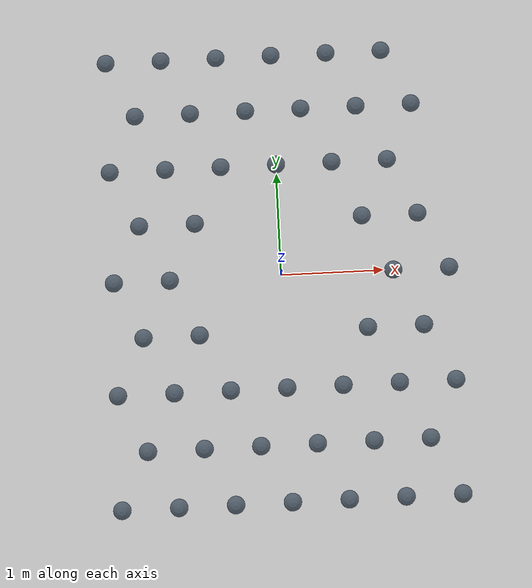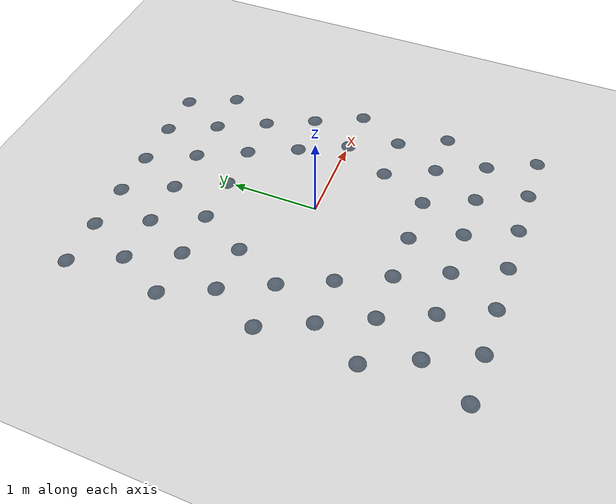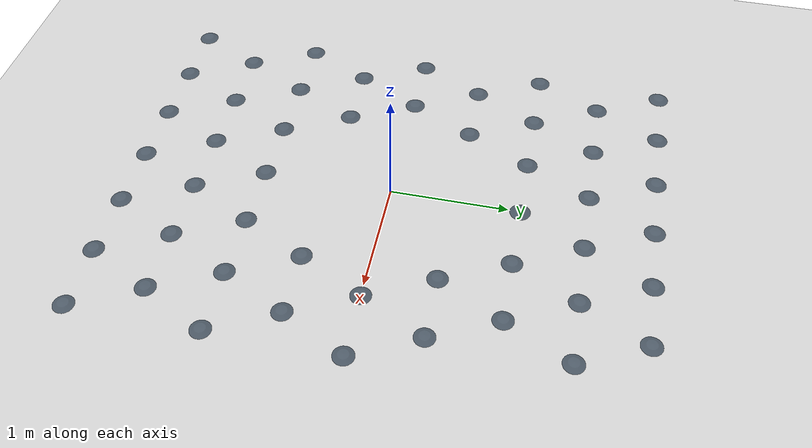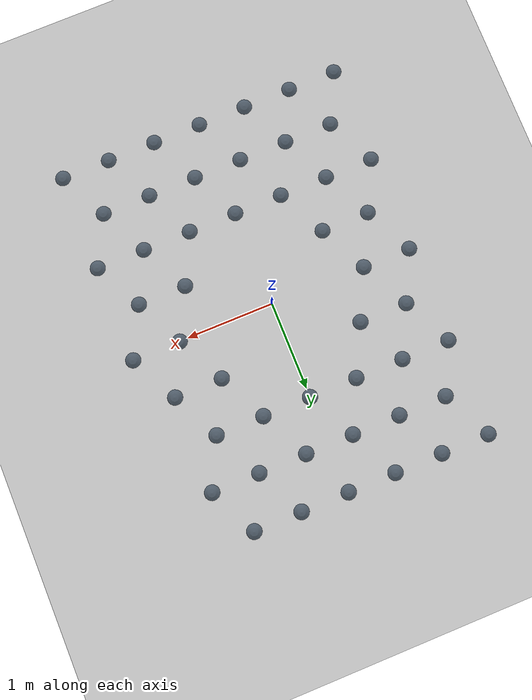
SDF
<sdf version="1.9">
 <world name="empty_ground">
  <model name="ground_plane">
   <static>true</static>
   <link name="link">
    <collision name="collision">
     <geometry><plane><normal>0 0 1</normal><size>100 100</size></plane></geometry>
     <surface>
      <friction>
       <ode><mu>1.5</mu><mu2>1.5</mu2></ode>
       <torsional><coefficient>0.0</coefficient></torsional>
      </friction>
     </surface>
    </collision>
    <visual name="visual">
     <geometry><plane><normal>0 0 1</normal><size>100 100</size></plane></geometry>
     <material><ambient>0.8 0.8 0.8 1</ambient><diffuse>0.8 0.8 0.8 1</diffuse></material>
    </visual>
   </link>
  </model>
  <model name="dome_1">
   <static>true</static>
   <pose>-1.650 -2.200 -0.1213 0 0 0</pose>
   <link name="link">
    <collision name="collision">
     <geometry><sphere><radius>0.1453</radius></sphere></geometry>
     <surface>
      <friction>
       <ode><mu>1.5</mu><mu2>1.5</mu2></ode>
       <torsional><coefficient>0.0</coefficient></torsional>
      </friction>
     </surface>
    </collision>
    <visual name="visual">
     <geometry><sphere><radius>0.1453</radius></sphere></geometry>
     <material><ambient>0.25 0.3 0.35 1</ambient><diffuse>0.30 0.35 0.4 1</diffuse></material>
    </visual>
   </link>
  </model>
  <model name="dome_2">
   <static>true</static>
   <pose>-1.380 -1.650 -0.1213 0 0 0</pose>
   <link name="link">
    <collision name="collision">
     <geometry><sphere><radius>0.1453</radius></sphere></geometry>
     <surface>
      <friction>
       <ode><mu>1.5</mu><mu2>1.5</mu2></ode>
       <torsional><coefficient>0.0</coefficient></torsional>
      </friction>
     </surface>
    </collision>
    <visual name="visual">
     <geometry><sphere><radius>0.1453</radius></sphere></geometry>
     <material><ambient>0.25 0.3 0.35 1</ambient><diffuse>0.30 0.35 0.4 1</diffuse></material>
    </visual>
   </link>
  </model>
  <model name="dome_3">
   <static>true</static>
   <pose>-1.650 -1.100 -0.1213 0 0 0</pose>
   <link name="link">
    <collision name="collision">
     <geometry><sphere><radius>0.1453</radius></sphere></geometry>
     <surface>
      <friction>
       <ode><mu>1.5</mu><mu2>1.5</mu2></ode>
       <torsional><coefficient>0.0</coefficient></torsional>
      </friction>
     </surface>
    </collision>
    <visual name="visual">
     <geometry><sphere><radius>0.1453</radius></sphere></geometry>
     <material><ambient>0.25 0.3 0.35 1</ambient><diffuse>0.30 0.35 0.4 1</diffuse></material>
    </visual>
   </link>
  </model>
  <model name="dome_4">
   <static>true</static>
   <pose>-1.380 -0.550 -0.1213 0 0 0</pose>
   <link name="link">
    <collision name="collision">
     <geometry><sphere><radius>0.1453</radius></sphere></geometry>
     <surface>
      <friction>
       <ode><mu>1.5</mu><mu2>1.5</mu2></ode>
       <torsional><coefficient>0.0</coefficient></torsional>
      </friction>
     </surface>
    </collision>
    <visual name="visual">
     <geometry><sphere><radius>0.1453</radius></sphere></geometry>
     <material><ambient>0.25 0.3 0.35 1</ambient><diffuse>0.30 0.35 0.4 1</diffuse></material>
    </visual>
   </link>
  </model>
  <model name="dome_5">
   <static>true</static>
   <pose>-1.650 0.000 -0.1213 0 0 0</pose>
   <link name="link">
    <collision name="collision">
     <geometry><sphere><radius>0.1453</radius></sphere></geometry>
     <surface>
      <friction>
       <ode><mu>1.5</mu><mu2>1.5</mu2></ode>
       <torsional><coefficient>0.0</coefficient></torsional>
      </friction>
     </surface>
    </collision>
    <visual name="visual">
     <geometry><sphere><radius>0.1453</radius></sphere></geometry>
     <material><ambient>0.25 0.3 0.35 1</ambient><diffuse>0.30 0.35 0.4 1</diffuse></material>
    </visual>
   </link>
  </model>
  <model name="dome_6">
   <static>true</static>
   <pose>-1.380 0.550 -0.1213 0 0 0</pose>
   <link name="link">
    <collision name="collision">
     <geometry><sphere><radius>0.1453</radius></sphere></geometry>
     <surface>
      <friction>
       <ode><mu>1.5</mu><mu2>1.5</mu2></ode>
       <torsional><coefficient>0.0</coefficient></torsional>
      </friction>
     </surface>
    </collision>
    <visual name="visual">
     <geometry><sphere><radius>0.1453</radius></sphere></geometry>
     <material><ambient>0.25 0.3 0.35 1</ambient><diffuse>0.30 0.35 0.4 1</diffuse></material>
    </visual>
   </link>
  </model>
  <model name="dome_7">
   <static>true</static>
   <pose>-1.650 1.100 -0.1213 0 0 0</pose>
   <link name="link">
    <collision name="collision">
     <geometry><sphere><radius>0.1453</radius></sphere></geometry>
     <surface>
      <friction>
       <ode><mu>1.5</mu><mu2>1.5</mu2></ode>
       <torsional><coefficient>0.0</coefficient></torsional>
      </friction>
     </surface>
    </collision>
    <visual name="visual">
     <geometry><sphere><radius>0.1453</radius></sphere></geometry>
     <material><ambient>0.25 0.3 0.35 1</ambient><diffuse>0.30 0.35 0.4 1</diffuse></material>
    </visual>
   </link>
  </model>
  <model name="dome_8">
   <static>true</static>
   <pose>-1.380 1.650 -0.1213 0 0 0</pose>
   <link name="link">
    <collision name="collision">
     <geometry><sphere><radius>0.1453</radius></sphere></geometry>
     <surface>
      <friction>
       <ode><mu>1.5</mu><mu2>1.5</mu2></ode>
       <torsional><coefficient>0.0</coefficient></torsional>
      </friction>
     </surface>
    </collision>
    <visual name="visual">
     <geometry><sphere><radius>0.1453</radius></sphere></geometry>
     <material><ambient>0.25 0.3 0.35 1</ambient><diffuse>0.30 0.35 0.4 1</diffuse></material>
    </visual>
   </link>
  </model>
  <model name="dome_9">
   <static>true</static>
   <pose>-1.650 2.200 -0.1213 0 0 0</pose>
   <link name="link">
    <collision name="collision">
     <geometry><sphere><radius>0.1453</radius></sphere></geometry>
     <surface>
      <friction>
       <ode><mu>1.5</mu><mu2>1.5</mu2></ode>
       <torsional><coefficient>0.0</coefficient></torsional>
      </friction>
     </surface>
    </collision>
    <visual name="visual">
     <geometry><sphere><radius>0.1453</radius></sphere></geometry>
     <material><ambient>0.25 0.3 0.35 1</ambient><diffuse>0.30 0.35 0.4 1</diffuse></material>
    </visual>
   </link>
  </model>
  <model name="dome_10">
   <static>true</static>
   <pose>-1.100 -2.200 -0.1213 0 0 0</pose>
   <link name="link">
    <collision name="collision">
     <geometry><sphere><radius>0.1453</radius></sphere></geometry>
     <surface>
      <friction>
       <ode><mu>1.5</mu><mu2>1.5</mu2></ode>
       <torsional><coefficient>0.0</coefficient></torsional>
      </friction>
     </surface>
    </collision>
    <visual name="visual">
     <geometry><sphere><radius>0.1453</radius></sphere></geometry>
     <material><ambient>0.25 0.3 0.35 1</ambient><diffuse>0.30 0.35 0.4 1</diffuse></material>
    </visual>
   </link>
  </model>
  <model name="dome_11">
   <static>true</static>
   <pose>-0.830 -1.650 -0.1213 0 0 0</pose>
   <link name="link">
    <collision name="collision">
     <geometry><sphere><radius>0.1453</radius></sphere></geometry>
     <surface>
      <friction>
       <ode><mu>1.5</mu><mu2>1.5</mu2></ode>
       <torsional><coefficient>0.0</coefficient></torsional>
      </friction>
     </surface>
    </collision>
    <visual name="visual">
     <geometry><sphere><radius>0.1453</radius></sphere></geometry>
     <material><ambient>0.25 0.3 0.35 1</ambient><diffuse>0.30 0.35 0.4 1</diffuse></material>
    </visual>
   </link>
  </model>
  <model name="dome_12">
   <static>true</static>
   <pose>-1.100 -1.100 -0.1213 0 0 0</pose>
   <link name="link">
    <collision name="collision">
     <geometry><sphere><radius>0.1453</radius></sphere></geometry>
     <surface>
      <friction>
       <ode><mu>1.5</mu><mu2>1.5</mu2></ode>
       <torsional><coefficient>0.0</coefficient></torsional>
      </friction>
     </surface>
    </collision>
    <visual name="visual">
     <geometry><sphere><radius>0.1453</radius></sphere></geometry>
     <material><ambient>0.25 0.3 0.35 1</ambient><diffuse>0.30 0.35 0.4 1</diffuse></material>
    </visual>
   </link>
  </model>
  <model name="dome_13">
   <static>true</static>
   <pose>-0.830 -0.550 -0.1213 0 0 0</pose>
   <link name="link">
    <collision name="collision">
     <geometry><sphere><radius>0.1453</radius></sphere></geometry>
     <surface>
      <friction>
       <ode><mu>1.5</mu><mu2>1.5</mu2></ode>
       <torsional><coefficient>0.0</coefficient></torsional>
      </friction>
     </surface>
    </collision>
    <visual name="visual">
     <geometry><sphere><radius>0.1453</radius></sphere></geometry>
     <material><ambient>0.25 0.3 0.35 1</ambient><diffuse>0.30 0.35 0.4 1</diffuse></material>
    </visual>
   </link>
  </model>
  <model name="dome_14">
   <static>true</static>
   <pose>-1.100 0.000 -0.1213 0 0 0</pose>
   <link name="link">
    <collision name="collision">
     <geometry><sphere><radius>0.1453</radius></sphere></geometry>
     <surface>
      <friction>
       <ode><mu>1.5</mu><mu2>1.5</mu2></ode>
       <torsional><coefficient>0.0</coefficient></torsional>
      </friction>
     </surface>
    </collision>
    <visual name="visual">
     <geometry><sphere><radius>0.1453</radius></sphere></geometry>
     <material><ambient>0.25 0.3 0.35 1</ambient><diffuse>0.30 0.35 0.4 1</diffuse></material>
    </visual>
   </link>
  </model>
  <model name="dome_15">
   <static>true</static>
   <pose>-0.830 0.550 -0.1213 0 0 0</pose>
   <link name="link">
    <collision name="collision">
     <geometry><sphere><radius>0.1453</radius></sphere></geometry>
     <surface>
      <friction>
       <ode><mu>1.5</mu><mu2>1.5</mu2></ode>
       <torsional><coefficient>0.0</coefficient></torsional>
      </friction>
     </surface>
    </collision>
    <visual name="visual">
     <geometry><sphere><radius>0.1453</radius></sphere></geometry>
     <material><ambient>0.25 0.3 0.35 1</ambient><diffuse>0.30 0.35 0.4 1</diffuse></material>
    </visual>
   </link>
  </model>
  <model name="dome_16">
   <static>true</static>
   <pose>-1.100 1.100 -0.1213 0 0 0</pose>
   <link name="link">
    <collision name="collision">
     <geometry><sphere><radius>0.1453</radius></sphere></geometry>
     <surface>
      <friction>
       <ode><mu>1.5</mu><mu2>1.5</mu2></ode>
       <torsional><coefficient>0.0</coefficient></torsional>
      </friction>
     </surface>
    </collision>
    <visual name="visual">
     <geometry><sphere><radius>0.1453</radius></sphere></geometry>
     <material><ambient>0.25 0.3 0.35 1</ambient><diffuse>0.30 0.35 0.4 1</diffuse></material>
    </visual>
   </link>
  </model>
  <model name="dome_17">
   <static>true</static>
   <pose>-0.830 1.650 -0.1213 0 0 0</pose>
   <link name="link">
    <collision name="collision">
     <geometry><sphere><radius>0.1453</radius></sphere></geometry>
     <surface>
      <friction>
       <ode><mu>1.5</mu><mu2>1.5</mu2></ode>
       <torsional><coefficient>0.0</coefficient></torsional>
      </friction>
     </surface>
    </collision>
    <visual name="visual">
     <geometry><sphere><radius>0.1453</radius></sphere></geometry>
     <material><ambient>0.25 0.3 0.35 1</ambient><diffuse>0.30 0.35 0.4 1</diffuse></material>
    </visual>
   </link>
  </model>
  <model name="dome_18">
   <static>true</static>
   <pose>-1.100 2.200 -0.1213 0 0 0</pose>
   <link name="link">
    <collision name="collision">
     <geometry><sphere><radius>0.1453</radius></sphere></geometry>
     <surface>
      <friction>
       <ode><mu>1.5</mu><mu2>1.5</mu2></ode>
       <torsional><coefficient>0.0</coefficient></torsional>
      </friction>
     </surface>
    </collision>
    <visual name="visual">
     <geometry><sphere><radius>0.1453</radius></sphere></geometry>
     <material><ambient>0.25 0.3 0.35 1</ambient><diffuse>0.30 0.35 0.4 1</diffuse></material>
    </visual>
   </link>
  </model>
  <model name="dome_19">
   <static>true</static>
   <pose>-0.550 -2.200 -0.1213 0 0 0</pose>
   <link name="link">
    <collision name="collision">
     <geometry><sphere><radius>0.1453</radius></sphere></geometry>
     <surface>
      <friction>
       <ode><mu>1.5</mu><mu2>1.5</mu2></ode>
       <torsional><coefficient>0.0</coefficient></torsional>
      </friction>
     </surface>
    </collision>
    <visual name="visual">
     <geometry><sphere><radius>0.1453</radius></sphere></geometry>
     <material><ambient>0.25 0.3 0.35 1</ambient><diffuse>0.30 0.35 0.4 1</diffuse></material>
    </visual>
   </link>
  </model>
  <model name="dome_20">
   <static>true</static>
   <pose>-0.280 -1.650 -0.1213 0 0 0</pose>
   <link name="link">
    <collision name="collision">
     <geometry><sphere><radius>0.1453</radius></sphere></geometry>
     <surface>
      <friction>
       <ode><mu>1.5</mu><mu2>1.5</mu2></ode>
       <torsional><coefficient>0.0</coefficient></torsional>
      </friction>
     </surface>
    </collision>
    <visual name="visual">
     <geometry><sphere><radius>0.1453</radius></sphere></geometry>
     <material><ambient>0.25 0.3 0.35 1</ambient><diffuse>0.30 0.35 0.4 1</diffuse></material>
    </visual>
   </link>
  </model>
  <model name="dome_21">
   <static>true</static>
   <pose>-0.550 -1.100 -0.1213 0 0 0</pose>
   <link name="link">
    <collision name="collision">
     <geometry><sphere><radius>0.1453</radius></sphere></geometry>
     <surface>
      <friction>
       <ode><mu>1.5</mu><mu2>1.5</mu2></ode>
       <torsional><coefficient>0.0</coefficient></torsional>
      </friction>
     </surface>
    </collision>
    <visual name="visual">
     <geometry><sphere><radius>0.1453</radius></sphere></geometry>
     <material><ambient>0.25 0.3 0.35 1</ambient><diffuse>0.30 0.35 0.4 1</diffuse></material>
    </visual>
   </link>
  </model>
  <model name="dome_22">
   <static>true</static>
   <pose>-0.550 1.100 -0.1213 0 0 0</pose>
   <link name="link">
    <collision name="collision">
     <geometry><sphere><radius>0.1453</radius></sphere></geometry>
     <surface>
      <friction>
       <ode><mu>1.5</mu><mu2>1.5</mu2></ode>
       <torsional><coefficient>0.0</coefficient></torsional>
      </friction>
     </surface>
    </collision>
    <visual name="visual">
     <geometry><sphere><radius>0.1453</radius></sphere></geometry>
     <material><ambient>0.25 0.3 0.35 1</ambient><diffuse>0.30 0.35 0.4 1</diffuse></material>
    </visual>
   </link>
  </model>
  <model name="dome_23">
   <static>true</static>
   <pose>-0.280 1.650 -0.1213 0 0 0</pose>
   <link name="link">
    <collision name="collision">
     <geometry><sphere><radius>0.1453</radius></sphere></geometry>
     <surface>
      <friction>
       <ode><mu>1.5</mu><mu2>1.5</mu2></ode>
       <torsional><coefficient>0.0</coefficient></torsional>
      </friction>
     </surface>
    </collision>
    <visual name="visual">
     <geometry><sphere><radius>0.1453</radius></sphere></geometry>
     <material><ambient>0.25 0.3 0.35 1</ambient><diffuse>0.30 0.35 0.4 1</diffuse></material>
    </visual>
   </link>
  </model>
  <model name="dome_24">
   <static>true</static>
   <pose>-0.550 2.200 -0.1213 0 0 0</pose>
   <link name="link">
    <collision name="collision">
     <geometry><sphere><radius>0.1453</radius></sphere></geometry>
     <surface>
      <friction>
       <ode><mu>1.5</mu><mu2>1.5</mu2></ode>
       <torsional><coefficient>0.0</coefficient></torsional>
      </friction>
     </surface>
    </collision>
    <visual name="visual">
     <geometry><sphere><radius>0.1453</radius></sphere></geometry>
     <material><ambient>0.25 0.3 0.35 1</ambient><diffuse>0.30 0.35 0.4 1</diffuse></material>
    </visual>
   </link>
  </model>
  <model name="dome_25">
   <static>true</static>
   <pose>0.000 -2.200 -0.1213 0 0 0</pose>
   <link name="link">
    <collision name="collision">
     <geometry><sphere><radius>0.1453</radius></sphere></geometry>
     <surface>
      <friction>
       <ode><mu>1.5</mu><mu2>1.5</mu2></ode>
       <torsional><coefficient>0.0</coefficient></torsional>
      </friction>
     </surface>
    </collision>
    <visual name="visual">
     <geometry><sphere><radius>0.1453</radius></sphere></geometry>
     <material><ambient>0.25 0.3 0.35 1</ambient><diffuse>0.30 0.35 0.4 1</diffuse></material>
    </visual>
   </link>
  </model>
  <model name="dome_26">
   <static>true</static>
   <pose>0.270 -1.650 -0.1213 0 0 0</pose>
   <link name="link">
    <collision name="collision">
     <geometry><sphere><radius>0.1453</radius></sphere></geometry>
     <surface>
      <friction>
       <ode><mu>1.5</mu><mu2>1.5</mu2></ode>
       <torsional><coefficient>0.0</coefficient></torsional>
      </friction>
     </surface>
    </collision>
    <visual name="visual">
     <geometry><sphere><radius>0.1453</radius></sphere></geometry>
     <material><ambient>0.25 0.3 0.35 1</ambient><diffuse>0.30 0.35 0.4 1</diffuse></material>
    </visual>
   </link>
  </model>
  <model name="dome_27">
   <static>true</static>
   <pose>0.000 -1.100 -0.1213 0 0 0</pose>
   <link name="link">
    <collision name="collision">
     <geometry><sphere><radius>0.1453</radius></sphere></geometry>
     <surface>
      <friction>
       <ode><mu>1.5</mu><mu2>1.5</mu2></ode>
       <torsional><coefficient>0.0</coefficient></torsional>
      </friction>
     </surface>
    </collision>
    <visual name="visual">
     <geometry><sphere><radius>0.1453</radius></sphere></geometry>
     <material><ambient>0.25 0.3 0.35 1</ambient><diffuse>0.30 0.35 0.4 1</diffuse></material>
    </visual>
   </link>
  </model>
  <model name="dome_28">
   <static>true</static>
   <pose>0.000 1.100 -0.1213 0 0 0</pose>
   <link name="link">
    <collision name="collision">
     <geometry><sphere><radius>0.1453</radius></sphere></geometry>
     <surface>
      <friction>
       <ode><mu>1.5</mu><mu2>1.5</mu2></ode>
       <torsional><coefficient>0.0</coefficient></torsional>
      </friction>
     </surface>
    </collision>
    <visual name="visual">
     <geometry><sphere><radius>0.1453</radius></sphere></geometry>
     <material><ambient>0.25 0.3 0.35 1</ambient><diffuse>0.30 0.35 0.4 1</diffuse></material>
    </visual>
   </link>
  </model>
  <model name="dome_29">
   <static>true</static>
   <pose>0.270 1.650 -0.1213 0 0 0</pose>
   <link name="link">
    <collision name="collision">
     <geometry><sphere><radius>0.1453</radius></sphere></geometry>
     <surface>
      <friction>
       <ode><mu>1.5</mu><mu2>1.5</mu2></ode>
       <torsional><coefficient>0.0</coefficient></torsional>
      </friction>
     </surface>
    </collision>
    <visual name="visual">
     <geometry><sphere><radius>0.1453</radius></sphere></geometry>
     <material><ambient>0.25 0.3 0.35 1</ambient><diffuse>0.30 0.35 0.4 1</diffuse></material>
    </visual>
   </link>
  </model>
  <model name="dome_30">
   <static>true</static>
   <pose>0.000 2.200 -0.1213 0 0 0</pose>
   <link name="link">
    <collision name="collision">
     <geometry><sphere><radius>0.1453</radius></sphere></geometry>
     <surface>
      <friction>
       <ode><mu>1.5</mu><mu2>1.5</mu2></ode>
       <torsional><coefficient>0.0</coefficient></torsional>
      </friction>
     </surface>
    </collision>
    <visual name="visual">
     <geometry><sphere><radius>0.1453</radius></sphere></geometry>
     <material><ambient>0.25 0.3 0.35 1</ambient><diffuse>0.30 0.35 0.4 1</diffuse></material>
    </visual>
   </link>
  </model>
  <model name="dome_31">
   <static>true</static>
   <pose>0.550 -2.200 -0.1213 0 0 0</pose>
   <link name="link">
    <collision name="collision">
     <geometry><sphere><radius>0.1453</radius></sphere></geometry>
     <surface>
      <friction>
       <ode><mu>1.5</mu><mu2>1.5</mu2></ode>
       <torsional><coefficient>0.0</coefficient></torsional>
      </friction>
     </surface>
    </collision>
    <visual name="visual">
     <geometry><sphere><radius>0.1453</radius></sphere></geometry>
     <material><ambient>0.25 0.3 0.35 1</ambient><diffuse>0.30 0.35 0.4 1</diffuse></material>
    </visual>
   </link>
  </model>
  <model name="dome_32">
   <static>true</static>
   <pose>0.820 -1.650 -0.1213 0 0 0</pose>
   <link name="link">
    <collision name="collision">
     <geometry><sphere><radius>0.1453</radius></sphere></geometry>
     <surface>
      <friction>
       <ode><mu>1.5</mu><mu2>1.5</mu2></ode>
       <torsional><coefficient>0.0</coefficient></torsional>
      </friction>
     </surface>
    </collision>
    <visual name="visual">
     <geometry><sphere><radius>0.1453</radius></sphere></geometry>
     <material><ambient>0.25 0.3 0.35 1</ambient><diffuse>0.30 0.35 0.4 1</diffuse></material>
    </visual>
   </link>
  </model>
  <model name="dome_33">
   <static>true</static>
   <pose>0.550 -1.100 -0.1213 0 0 0</pose>
   <link name="link">
    <collision name="collision">
     <geometry><sphere><radius>0.1453</radius></sphere></geometry>
     <surface>
      <friction>
       <ode><mu>1.5</mu><mu2>1.5</mu2></ode>
       <torsional><coefficient>0.0</coefficient></torsional>
      </friction>
     </surface>
    </collision>
    <visual name="visual">
     <geometry><sphere><radius>0.1453</radius></sphere></geometry>
     <material><ambient>0.25 0.3 0.35 1</ambient><diffuse>0.30 0.35 0.4 1</diffuse></material>
    </visual>
   </link>
  </model>
  <model name="dome_34">
   <static>true</static>
   <pose>0.820 -0.550 -0.1213 0 0 0</pose>
   <link name="link">
    <collision name="collision">
     <geometry><sphere><radius>0.1453</radius></sphere></geometry>
     <surface>
      <friction>
       <ode><mu>1.5</mu><mu2>1.5</mu2></ode>
       <torsional><coefficient>0.0</coefficient></torsional>
      </friction>
     </surface>
    </collision>
    <visual name="visual">
     <geometry><sphere><radius>0.1453</radius></sphere></geometry>
     <material><ambient>0.25 0.3 0.35 1</ambient><diffuse>0.30 0.35 0.4 1</diffuse></material>
    </visual>
   </link>
  </model>
  <model name="dome_35">
   <static>true</static>
   <pose>0.820 0.550 -0.1213 0 0 0</pose>
   <link name="link">
    <collision name="collision">
     <geometry><sphere><radius>0.1453</radius></sphere></geometry>
     <surface>
      <friction>
       <ode><mu>1.5</mu><mu2>1.5</mu2></ode>
       <torsional><coefficient>0.0</coefficient></torsional>
      </friction>
     </surface>
    </collision>
    <visual name="visual">
     <geometry><sphere><radius>0.1453</radius></sphere></geometry>
     <material><ambient>0.25 0.3 0.35 1</ambient><diffuse>0.30 0.35 0.4 1</diffuse></material>
    </visual>
   </link>
  </model>
  <model name="dome_36">
   <static>true</static>
   <pose>0.550 1.100 -0.1213 0 0 0</pose>
   <link name="link">
    <collision name="collision">
     <geometry><sphere><radius>0.1453</radius></sphere></geometry>
     <surface>
      <friction>
       <ode><mu>1.5</mu><mu2>1.5</mu2></ode>
       <torsional><coefficient>0.0</coefficient></torsional>
      </friction>
     </surface>
    </collision>
    <visual name="visual">
     <geometry><sphere><radius>0.1453</radius></sphere></geometry>
     <material><ambient>0.25 0.3 0.35 1</ambient><diffuse>0.30 0.35 0.4 1</diffuse></material>
    </visual>
   </link>
  </model>
  <model name="dome_37">
   <static>true</static>
   <pose>0.820 1.650 -0.1213 0 0 0</pose>
   <link name="link">
    <collision name="collision">
     <geometry><sphere><radius>0.1453</radius></sphere></geometry>
     <surface>
      <friction>
       <ode><mu>1.5</mu><mu2>1.5</mu2></ode>
       <torsional><coefficient>0.0</coefficient></torsional>
      </friction>
     </surface>
    </collision>
    <visual name="visual">
     <geometry><sphere><radius>0.1453</radius></sphere></geometry>
     <material><ambient>0.25 0.3 0.35 1</ambient><diffuse>0.30 0.35 0.4 1</diffuse></material>
    </visual>
   </link>
  </model>
  <model name="dome_38">
   <static>true</static>
   <pose>0.550 2.200 -0.1213 0 0 0</pose>
   <link name="link">
    <collision name="collision">
     <geometry><sphere><radius>0.1453</radius></sphere></geometry>
     <surface>
      <friction>
       <ode><mu>1.5</mu><mu2>1.5</mu2></ode>
       <torsional><coefficient>0.0</coefficient></torsional>
      </friction>
     </surface>
    </collision>
    <visual name="visual">
     <geometry><sphere><radius>0.1453</radius></sphere></geometry>
     <material><ambient>0.25 0.3 0.35 1</ambient><diffuse>0.30 0.35 0.4 1</diffuse></material>
    </visual>
   </link>
  </model>
  <model name="dome_39">
   <static>true</static>
   <pose>1.100 -2.200 -0.1213 0 0 0</pose>
   <link name="link">
    <collision name="collision">
     <geometry><sphere><radius>0.1453</radius></sphere></geometry>
     <surface>
      <friction>
       <ode><mu>1.5</mu><mu2>1.5</mu2></ode>
       <torsional><coefficient>0.0</coefficient></torsional>
      </friction>
     </surface>
    </collision>
    <visual name="visual">
     <geometry><sphere><radius>0.1453</radius></sphere></geometry>
     <material><ambient>0.25 0.3 0.35 1</ambient><diffuse>0.30 0.35 0.4 1</diffuse></material>
    </visual>
   </link>
  </model>
  <model name="dome_40">
   <static>true</static>
   <pose>1.370 -1.650 -0.1213 0 0 0</pose>
   <link name="link">
    <collision name="collision">
     <geometry><sphere><radius>0.1453</radius></sphere></geometry>
     <surface>
      <friction>
       <ode><mu>1.5</mu><mu2>1.5</mu2></ode>
       <torsional><coefficient>0.0</coefficient></torsional>
      </friction>
     </surface>
    </collision>
    <visual name="visual">
     <geometry><sphere><radius>0.1453</radius></sphere></geometry>
     <material><ambient>0.25 0.3 0.35 1</ambient><diffuse>0.30 0.35 0.4 1</diffuse></material>
    </visual>
   </link>
  </model>
  <model name="dome_41">
   <static>true</static>
   <pose>1.100 -1.100 -0.1213 0 0 0</pose>
   <link name="link">
    <collision name="collision">
     <geometry><sphere><radius>0.1453</radius></sphere></geometry>
     <surface>
      <friction>
       <ode><mu>1.5</mu><mu2>1.5</mu2></ode>
       <torsional><coefficient>0.0</coefficient></torsional>
      </friction>
     </surface>
    </collision>
    <visual name="visual">
     <geometry><sphere><radius>0.1453</radius></sphere></geometry>
     <material><ambient>0.25 0.3 0.35 1</ambient><diffuse>0.30 0.35 0.4 1</diffuse></material>
    </visual>
   </link>
  </model>
  <model name="dome_42">
   <static>true</static>
   <pose>1.370 -0.550 -0.1213 0 0 0</pose>
   <link name="link">
    <collision name="collision">
     <geometry><sphere><radius>0.1453</radius></sphere></geometry>
     <surface>
      <friction>
       <ode><mu>1.5</mu><mu2>1.5</mu2></ode>
       <torsional><coefficient>0.0</coefficient></torsional>
      </friction>
     </surface>
    </collision>
    <visual name="visual">
     <geometry><sphere><radius>0.1453</radius></sphere></geometry>
     <material><ambient>0.25 0.3 0.35 1</ambient><diffuse>0.30 0.35 0.4 1</diffuse></material>
    </visual>
   </link>
  </model>
  <model name="dome_43">
   <static>true</static>
   <pose>1.100 0.000 -0.1213 0 0 0</pose>
   <link name="link">
    <collision name="collision">
     <geometry><sphere><radius>0.1453</radius></sphere></geometry>
     <surface>
      <friction>
       <ode><mu>1.5</mu><mu2>1.5</mu2></ode>
       <torsional><coefficient>0.0</coefficient></torsional>
      </friction>
     </surface>
    </collision>
    <visual name="visual">
     <geometry><sphere><radius>0.1453</radius></sphere></geometry>
     <material><ambient>0.25 0.3 0.35 1</ambient><diffuse>0.30 0.35 0.4 1</diffuse></material>
    </visual>
   </link>
  </model>
  <model name="dome_44">
   <static>true</static>
   <pose>1.370 0.550 -0.1213 0 0 0</pose>
   <link name="link">
    <collision name="collision">
     <geometry><sphere><radius>0.1453</radius></sphere></geometry>
     <surface>
      <friction>
       <ode><mu>1.5</mu><mu2>1.5</mu2></ode>
       <torsional><coefficient>0.0</coefficient></torsional>
      </friction>
     </surface>
    </collision>
    <visual name="visual">
     <geometry><sphere><radius>0.1453</radius></sphere></geometry>
     <material><ambient>0.25 0.3 0.35 1</ambient><diffuse>0.30 0.35 0.4 1</diffuse></material>
    </visual>
   </link>
  </model>
  <model name="dome_45">
   <static>true</static>
   <pose>1.100 1.100 -0.1213 0 0 0</pose>
   <link name="link">
    <collision name="collision">
     <geometry><sphere><radius>0.1453</radius></sphere></geometry>
     <surface>
      <friction>
       <ode><mu>1.5</mu><mu2>1.5</mu2></ode>
       <torsional><coefficient>0.0</coefficient></torsional>
      </friction>
     </surface>
    </collision>
    <visual name="visual">
     <geometry><sphere><radius>0.1453</radius></sphere></geometry>
     <material><ambient>0.25 0.3 0.35 1</ambient><diffuse>0.30 0.35 0.4 1</diffuse></material>
    </visual>
   </link>
  </model>
  <model name="dome_46">
   <static>true</static>
   <pose>1.370 1.650 -0.1213 0 0 0</pose>
   <link name="link">
    <collision name="collision">
     <geometry><sphere><radius>0.1453</radius></sphere></geometry>
     <surface>
      <friction>
       <ode><mu>1.5</mu><mu2>1.5</mu2></ode>
       <torsional><coefficient>0.0</coefficient></torsional>
      </friction>
     </surface>
    </collision>
    <visual name="visual">
     <geometry><sphere><radius>0.1453</radius></sphere></geometry>
     <material><ambient>0.25 0.3 0.35 1</ambient><diffuse>0.30 0.35 0.4 1</diffuse></material>
    </visual>
   </link>
  </model>
  <model name="dome_47">
   <static>true</static>
   <pose>1.100 2.200 -0.1213 0 0 0</pose>
   <link name="link">
    <collision name="collision">
     <geometry><sphere><radius>0.1453</radius></sphere></geometry>
     <surface>
      <friction>
       <ode><mu>1.5</mu><mu2>1.5</mu2></ode>
       <torsional><coefficient>0.0</coefficient></torsional>
      </friction>
     </surface>
    </collision>
    <visual name="visual">
     <geometry><sphere><radius>0.1453</radius></sphere></geometry>
     <material><ambient>0.25 0.3 0.35 1</ambient><diffuse>0.30 0.35 0.4 1</diffuse></material>
    </visual>
   </link>
  </model>
  <model name="dome_48">
   <static>true</static>
   <pose>1.650 -2.200 -0.1213 0 0 0</pose>
   <link name="link">
    <collision name="collision">
     <geometry><sphere><radius>0.1453</radius></sphere></geometry>
     <surface>
      <friction>
       <ode><mu>1.5</mu><mu2>1.5</mu2></ode>
       <torsional><coefficient>0.0</coefficient></torsional>
      </friction>
     </surface>
    </collision>
    <visual name="visual">
     <geometry><sphere><radius>0.1453</radius></sphere></geometry>
     <material><ambient>0.25 0.3 0.35 1</ambient><diffuse>0.30 0.35 0.4 1</diffuse></material>
    </visual>
   </link>
  </model>
  <model name="dome_50">
   <static>true</static>
   <pose>1.650 -1.100 -0.1213 0 0 0</pose>
   <link name="link">
    <collision name="collision">
     <geometry><sphere><radius>0.1453</radius></sphere></geometry>
     <surface>
      <friction>
       <ode><mu>1.5</mu><mu2>1.5</mu2></ode>
       <torsional><coefficient>0.0</coefficient></torsional>
      </friction>
     </surface>
    </collision>
    <visual name="visual">
     <geometry><sphere><radius>0.1453</radius></sphere></geometry>
     <material><ambient>0.25 0.3 0.35 1</ambient><diffuse>0.30 0.35 0.4 1</diffuse></material>
    </visual>
   </link>
  </model>
  <model name="dome_52">
   <static>true</static>
   <pose>1.650 0.000 -0.1213 0 0 0</pose>
   <link name="link">
    <collision name="collision">
     <geometry><sphere><radius>0.1453</radius></sphere></geometry>
     <surface>
      <friction>
       <ode><mu>1.5</mu><mu2>1.5</mu2></ode>
       <torsional><coefficient>0.0</coefficient></torsional>
      </friction>
     </surface>
    </collision>
    <visual name="visual">
     <geometry><sphere><radius>0.1453</radius></sphere></geometry>
     <material><ambient>0.25 0.3 0.35 1</ambient><diffuse>0.30 0.35 0.4 1</diffuse></material>
    </visual>
   </link>
  </model>
 </world>
</sdf>
